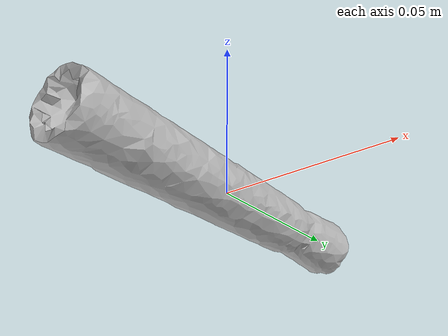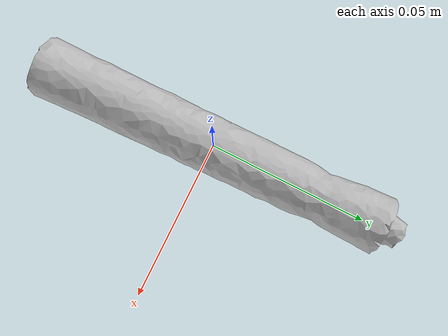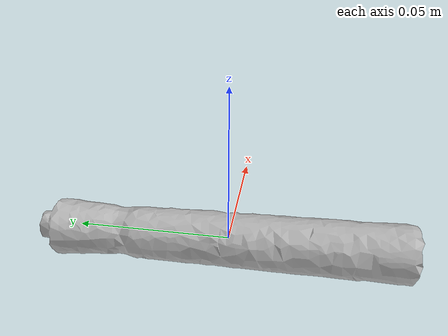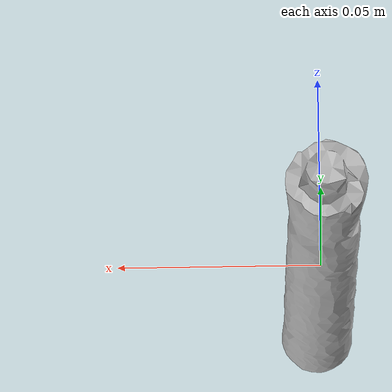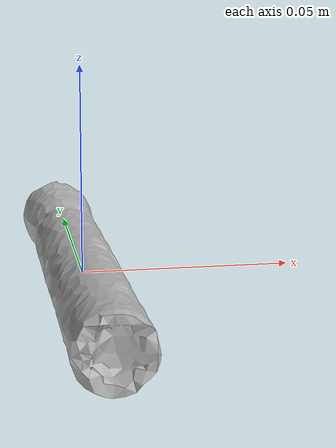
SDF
<?xml version="1.0" ?>
<sdf version="1.7">
    <model name="040_large_marker">
        <link name="040_large_marker_link">
            <inertial>
                <pose>-0.00008 -0.000655 -0.000489 0.0 0.0 0.0</pose>
                <mass>1.0</mass>
                <inertia>0.0 0.0 0.0 0.0 0.0 0.0</inertia>
            </inertial>
            <collision name="040_large_marker_collision">
                <surface>
                    <friction>
                        <ode>
                            <mu>1</mu>
                            <mu2>1</mu2>
                        </ode>
                    </friction>
                </surface>
                <max_contact>1</max_contact>
                <geometry>
                    <mesh>
                        <uri>model://040_large_marker/textured.obj</uri>
                    </mesh>
                </geometry>
            </collision>
            <visual name="040_large_marker_visual">
                <geometry>
                    <mesh>
                        <uri>model://040_large_marker/textured.obj</uri>
                    </mesh>
                </geometry>
            </visual>
        </link>

        <joint name="world_to_base_link" type="fixed">
            <parent>world</parent>
            <child>040_large_marker_link</child>
        </joint>
    </model>
</sdf>
